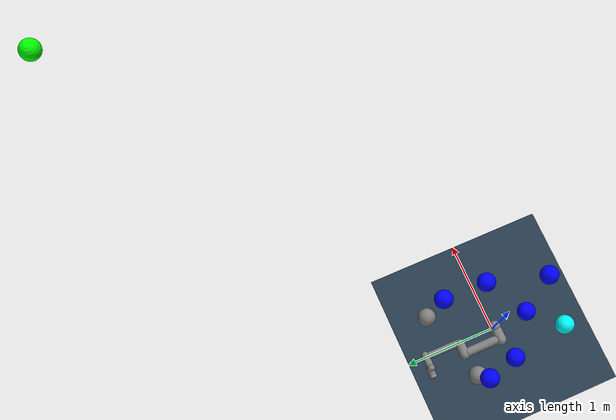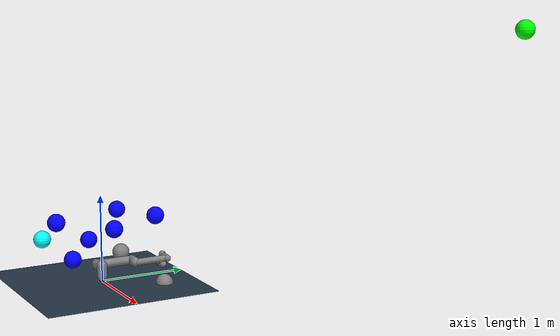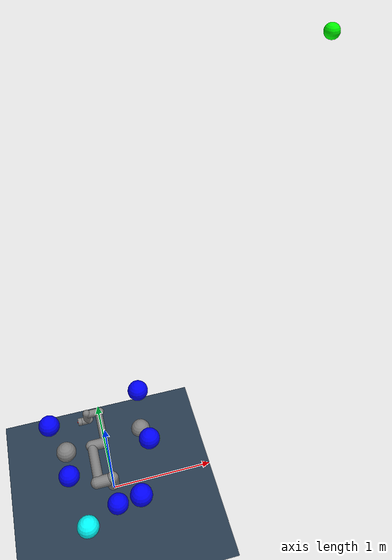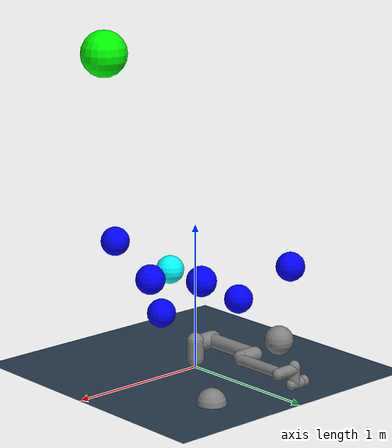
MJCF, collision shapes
<mujoco model="ur5e scene">
  <include file="ur5e.xml"/>

  <statistic center="0.3 0 0.3" extent="0.8" meansize="0.08"/>

  <visual>
    <headlight diffuse="0.6 0.6 0.6" ambient="0.1 0.1 0.1" specular="0 0 0"/>
    <global azimuth="120" elevation="-20"/>

  </visual>

  <default>
    <camera pos="1.821 2.144 1.389" xyaxes="-0.769 0.639 0.000 -0.264 -0.317 0.911"/>
  </default>

  <asset>
    <texture name="grid" type="2d" builtin="checker" rgb1=".2 .3 .4" rgb2=".1 0.15 0.2" width="512" height="512"
      mark="cross" markrgb=".8 .8 .8"/>
    <material name="grid" texture="grid" texrepeat="1 1" texuniform="true"/>
    <texture name="skybox" type="skybox" builtin="gradient" rgb1="1 1 1" rgb2="1 1 1"
               width="800" height="800" mark="random" markrgb="1 1 1"/>
  </asset>

  <worldbody>
    <light pos="0 0 1.5" directional="true"/>
    <geom name="floor" size="1 1 0.01" type="plane" material="grid"/>
    <body name="table" pos=".4 .6 0">
      <geom name="table" type="sphere" size="0.1"/>

    </body>
    <body name="target" pos="-.4 .4 .2">
      <geom name="target" type="sphere" size="0.1"/>

    </body>

    <body name="obstacle" pos="-.3 -.6 0.5">
      <geom name="obstacle" type="sphere" size="0.1" rgba="0 1 1 1"/>

    </body>

    <body name="obstacle3" pos=".2 -.6 0.8">
      <geom name="obstacle3" type="sphere" size="0.1" rgba="0 0 1 1"/>

    </body>

    <body name="obstacle2" pos=".4 .5 0.8">
      <geom name="obstacle2" type="sphere" size="0.1" rgba="0 0 1 1"/>

    </body>
     <body name="obstacle4" pos="-.5 .4 0.7">
      <geom name="obstacle4" type="sphere" size="0.1" rgba="0 0 1 1"/>

    </body>

    <body name="obstacle5" pos=".4 0 0.7">
      <geom name="obstacle5" type="sphere" size="0.1" rgba="0 0 1 1"/>

    </body>
     <body name="obstacle6" pos="-.4 0 0.4">
      <geom name="obstacle6" type="sphere" size="0.1" rgba="0 0 1 1"/>

    </body>

    <body name="obstacle7" pos="0 -0.35 0.3">
      <geom name="obstacle7" type="sphere" size="0.1" rgba="0 0 1 1"/>
    </body>

    <body name="box1" pos="3.4 3.2 3">
      <geom name="box1" type="sphere" size="0.1" rgba="0 1 0 1"/>
      <freejoint/>
    </body>
  </worldbody>
  <keyframe>
    <key name="home" qpos="1.5708 -1.5708 1.5708 -1.5708 -1.5708 0 0 0 0 0 0 0 0" ctrl="-1.5708 -1.5708 1.5708 -1.5708 -1.5708 0"/>
  </keyframe>
</mujoco>

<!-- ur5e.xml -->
<mujoco model="ur5e">
  <compiler angle="radian" meshdir="assets" autolimits="true"/>

  <option integrator="implicitfast"/>

  <default>
    <default class="ur5e">
      <default class="visual">
        <geom type="mesh" contype="0" conaffinity="0" group="2"/>
      </default>
      <default class="collision">
        <geom type="capsule" group="3"/>
        <default class="eef_collision">
          <geom type="cylinder"/>
        </default>
      </default>
      <joint axis="0 1 0" range="-6.28319 6.28319"/>
      <default class="joint_limited">
        <joint range="-3.1415 3.1415"/>
      </default>
      <default class="position">
        <position ctrlrange="-6.2831 6.2831" kp="2000" kv="100" forcerange="-150 150"/>
        <default class="position_limited">
          <position ctrlrange="-3.1415 3.1415"/>
        </default>
        <default class="position_small">
          <position kp="500" kv="25" forcerange="-28 28"/>
        </default>
      </default>
    </default>
  </default>

  <asset>
    <material name="black" rgba="0.033 0.033 0.033 1"/>
    <material name="jointgray" rgba="0.278 0.278 0.278 1"/>
    <material name="linkgray" rgba="0.82 0.82 0.82 1"/>
    <material name="urblue" rgba="0.49 0.678 0.8 1"/>

    <mesh file="base_0.obj"/>
    <mesh file="base_1.obj"/>
    <mesh file="shoulder_0.obj"/>
    <mesh file="shoulder_1.obj"/>
    <mesh file="shoulder_2.obj"/>
    <mesh file="upperarm_0.obj"/>
    <mesh file="upperarm_1.obj"/>
    <mesh file="upperarm_2.obj"/>
    <mesh file="upperarm_3.obj"/>
    <mesh file="forearm_0.obj"/>
    <mesh file="forearm_1.obj"/>
    <mesh file="forearm_2.obj"/>
    <mesh file="forearm_3.obj"/>
    <mesh file="wrist1_0.obj"/>
    <mesh file="wrist1_1.obj"/>
    <mesh file="wrist1_2.obj"/>
    <mesh file="wrist2_0.obj"/>
    <mesh file="wrist2_1.obj"/>
    <mesh file="wrist2_2.obj"/>
    <mesh file="wrist3.obj"/>
  </asset>

  <worldbody>
    <body name="base" quat="1 0 0 1" childclass="ur5e">
      <inertial mass="4" pos="0 0 0" diaginertia="0.00443333156 0.00443333156 0.0072"/>
      <geom mesh="base_0" material="black" class="visual"/>
      <geom mesh="base_1" material="jointgray" class="visual"/>
      <body name="shoulder_link" pos="0 0 0.163">
        <inertial mass="3.7" pos="0 0 0" diaginertia="0.0102675 0.0102675 0.00666"/>
        <joint name="shoulder_pan" axis="0 0 1"/>
        <geom mesh="shoulder_0" material="urblue" class="visual"/>
        <geom mesh="shoulder_1" material="black" class="visual"/>
        <geom mesh="shoulder_2" material="jointgray" class="visual"/>
        <geom class="collision" size="0.06 0.06" pos="0 0 -0.04"/>
        <body name="upper_arm_link" pos="0 0.138 0" quat="1 0 1 0">
          <inertial mass="8.393" pos="0 0 0.2125" diaginertia="0.133886 0.133886 0.0151074"/>
          <joint name="shoulder_lift"/>
          <geom mesh="upperarm_0" material="linkgray" class="visual"/>
          <geom mesh="upperarm_1" material="black" class="visual"/>
          <geom mesh="upperarm_2" material="jointgray" class="visual"/>
          <geom mesh="upperarm_3" material="urblue" class="visual"/>
          <geom class="collision" pos="0 -0.04 0" quat="1 1 0 0" size="0.06 0.06"/>
          <geom class="collision" size="0.05 0.2" pos="0 0 0.2"/>
          <body name="forearm_link" pos="0 -0.131 0.425">
            <inertial mass="2.275" pos="0 0 0.196" diaginertia="0.0311796 0.0311796 0.004095"/>
            <joint name="elbow" class="joint_limited"/>
            <geom mesh="forearm_0" material="urblue" class="visual"/>
            <geom mesh="forearm_1" material="linkgray" class="visual"/>
            <geom mesh="forearm_2" material="black" class="visual"/>
            <geom mesh="forearm_3" material="jointgray" class="visual"/>
            <geom class="collision" pos="0 0.08 0" quat="1 1 0 0" size="0.055 0.06"/>
            <geom class="collision" size="0.038 0.19" pos="0 0 0.2"/>
            <body name="wrist_1_link" pos="0 0 0.392" quat="1 0 1 0">
              <inertial mass="1.219" pos="0 0.127 0" diaginertia="0.0025599 0.0025599 0.0021942"/>
              <joint name="wrist_1"/>
              <geom mesh="wrist1_0" material="black" class="visual"/>
              <geom mesh="wrist1_1" material="urblue" class="visual"/>
              <geom mesh="wrist1_2" material="jointgray" class="visual"/>
              <geom class="collision" pos="0 0.05 0" quat="1 1 0 0" size="0.04 0.07"/>
              <body name="wrist_2_link" pos="0 0.127 0">
                <inertial mass="1.219" pos="0 0 0.1" diaginertia="0.0025599 0.0025599 0.0021942"/>
                <joint name="wrist_2" axis="0 0 1"/>
                <geom mesh="wrist2_0" material="black" class="visual"/>
                <geom mesh="wrist2_1" material="urblue" class="visual"/>
                <geom mesh="wrist2_2" material="jointgray" class="visual"/>
                <geom class="collision" size="0.04 0.06" pos="0 0 0.04"/>
                <geom class="collision" pos="0 0.02 0.1" quat="1 1 0 0" size="0.04 0.04"/>
                <body name="wrist_3_link" pos="0 0 0.1">
                  <inertial mass="0.1879" pos="0 0.0771683 0" quat="1 0 0 1"
                    diaginertia="0.000132134 9.90863e-05 9.90863e-05"/>
                  <joint name="wrist_3"/>
                  <geom material="linkgray" mesh="wrist3" class="visual"/>
                  <geom class="eef_collision" pos="0 0.08 0" quat="1 1 0 0" size="0.04 0.02"/>
                  <site name="attachment_site" size="0.01" pos="0 0.1 0" quat="-1 1 1 1" rgba="1 0 0 1" group="1"/>
                </body>
              </body>
            </body>
          </body>
        </body>
      </body>
    </body>
  </worldbody>

  <actuator>
    <position class="position" name="shoulder_pan" joint="shoulder_pan"/>
    <position class="position" name="shoulder_lift" joint="shoulder_lift"/>
    <position class="position_limited" name="elbow" joint="elbow"/>
    <position class="position_small" name="wrist_1" joint="wrist_1"/>
    <position class="position_small" name="wrist_2" joint="wrist_2"/>
    <position class="position_small" name="wrist_3" joint="wrist_3"/>
  </actuator>

</mujoco>
